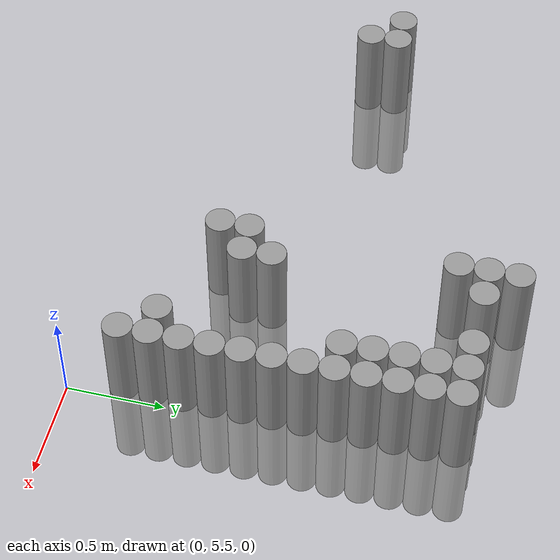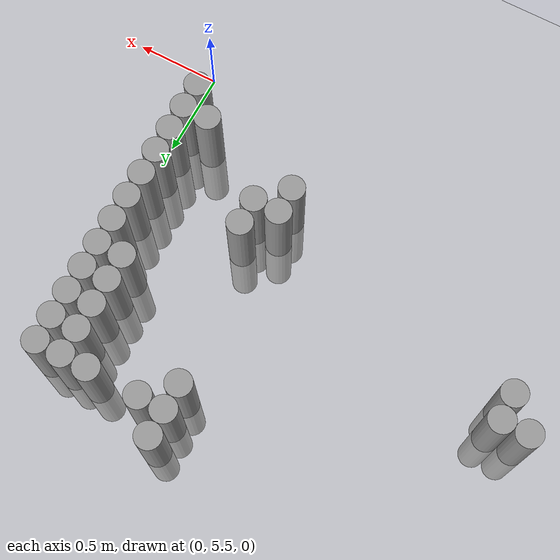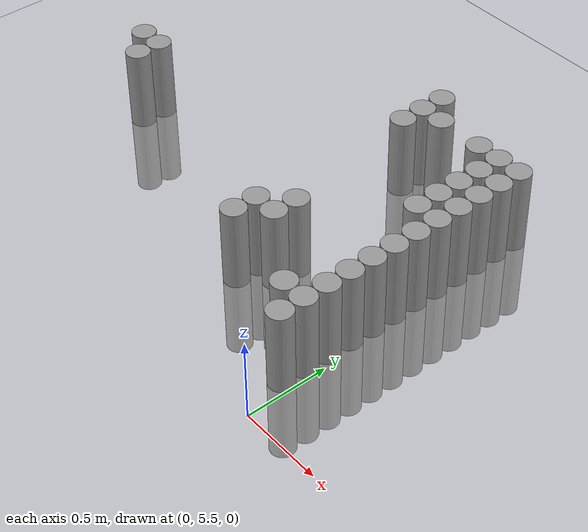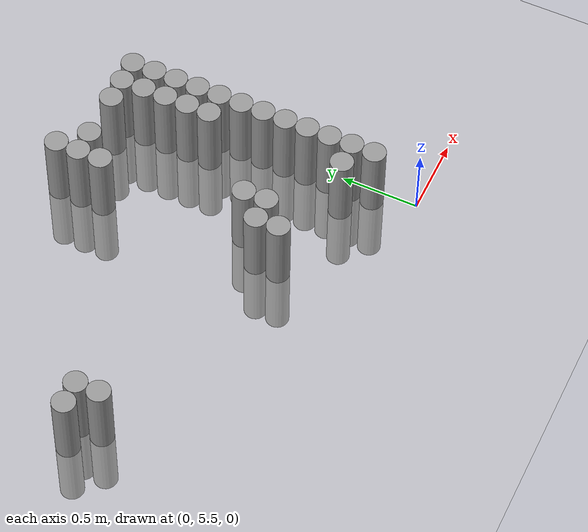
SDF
<sdf version="1.6">
 <world name="default">
  <model name="ground_plane">
   <static>1</static>
   <static>1</static>
   <link name="link">
    <collision name="collision">
     <geometry><plane><normal>0 0 1</normal><size>100 100</size></plane></geometry>
     <surface><friction><ode><mu>100</mu><mu2>50</mu2></ode></friction></surface>
    </collision>
    <visual name="visual">
     <cast_shadows>0</cast_shadows>
     <geometry><plane><normal>0 0 1</normal><size>100 100</size></plane></geometry>
     <material>
      <script><uri>file://media/materials/scripts/gazebo.material</uri><name>Gazebo/Grey</name></script>
     </material>
    </visual>
   </link>
  </model>
  <model name="unit_cylinder_173">
   <static>1</static>
   <pose>-2.475000 6.675000 0.000000 0.000000 0.000000 0.000000</pose>
   <link name="link">
    <inertial>
     <mass>1</mass>
     <inertia><ixx>0.145833</ixx><ixy>0</ixy><ixz>0</ixz><iyy>0.145833</iyy><iyz>0</iyz><izz>0.125</izz></inertia>
    </inertial>
    <collision name="collision">
     <geometry><cylinder><radius>0.075000</radius><length>1</length></cylinder></geometry>
    </collision>
    <visual name="visual">
     <geometry><cylinder><radius>0.075000</radius><length>1</length></cylinder></geometry>
     <material>
      <script><name>Gazebo/Grey</name><uri>file://media/materials/scripts/gazebo.material</uri></script>
     </material>
    </visual>
   </link>
  </model>
  <model name="unit_cylinder_175">
   <static>1</static>
   <pose>-2.325000 6.525000 0.000000 0.000000 0.000000 0.000000</pose>
   <link name="link">
    <inertial>
     <mass>1</mass>
     <inertia><ixx>0.145833</ixx><ixy>0</ixy><ixz>0</ixz><iyy>0.145833</iyy><iyz>0</iyz><izz>0.125</izz></inertia>
    </inertial>
    <collision name="collision">
     <geometry><cylinder><radius>0.075000</radius><length>1</length></cylinder></geometry>
    </collision>
    <visual name="visual">
     <geometry><cylinder><radius>0.075000</radius><length>1</length></cylinder></geometry>
     <material>
      <script><name>Gazebo/Grey</name><uri>file://media/materials/scripts/gazebo.material</uri></script>
     </material>
    </visual>
   </link>
  </model>
  <model name="unit_cylinder_176">
   <static>1</static>
   <pose>-2.325000 6.675000 0.000000 0.000000 0.000000 0.000000</pose>
   <link name="link">
    <inertial>
     <mass>1</mass>
     <inertia><ixx>0.145833</ixx><ixy>0</ixy><ixz>0</ixz><iyy>0.145833</iyy><iyz>0</iyz><izz>0.125</izz></inertia>
    </inertial>
    <collision name="collision">
     <geometry><cylinder><radius>0.075000</radius><length>1</length></cylinder></geometry>
    </collision>
    <visual name="visual">
     <geometry><cylinder><radius>0.075000</radius><length>1</length></cylinder></geometry>
     <material>
      <script><name>Gazebo/Grey</name><uri>file://media/materials/scripts/gazebo.material</uri></script>
     </material>
    </visual>
   </link>
  </model>
  <model name="unit_cylinder_179">
   <static>1</static>
   <pose>-0.825000 6.075000 0.000000 0.000000 0.000000 0.000000</pose>
   <link name="link">
    <inertial>
     <mass>1</mass>
     <inertia><ixx>0.145833</ixx><ixy>0</ixy><ixz>0</ixz><iyy>0.145833</iyy><iyz>0</iyz><izz>0.125</izz></inertia>
    </inertial>
    <collision name="collision">
     <geometry><cylinder><radius>0.075000</radius><length>1</length></cylinder></geometry>
    </collision>
    <visual name="visual">
     <geometry><cylinder><radius>0.075000</radius><length>1</length></cylinder></geometry>
     <material>
      <script><name>Gazebo/Grey</name><uri>file://media/materials/scripts/gazebo.material</uri></script>
     </material>
    </visual>
   </link>
  </model>
  <model name="unit_cylinder_180">
   <static>1</static>
   <pose>-0.825000 6.225000 0.000000 0.000000 0.000000 0.000000</pose>
   <link name="link">
    <inertial>
     <mass>1</mass>
     <inertia><ixx>0.145833</ixx><ixy>0</ixy><ixz>0</ixz><iyy>0.145833</iyy><iyz>0</iyz><izz>0.125</izz></inertia>
    </inertial>
    <collision name="collision">
     <geometry><cylinder><radius>0.075000</radius><length>1</length></cylinder></geometry>
    </collision>
    <visual name="visual">
     <geometry><cylinder><radius>0.075000</radius><length>1</length></cylinder></geometry>
     <material>
      <script><name>Gazebo/Grey</name><uri>file://media/materials/scripts/gazebo.material</uri></script>
     </material>
    </visual>
   </link>
  </model>
  <model name="unit_cylinder_181">
   <static>1</static>
   <pose>-0.825000 7.275000 0.000000 0.000000 0.000000 0.000000</pose>
   <link name="link">
    <inertial>
     <mass>1</mass>
     <inertia><ixx>0.145833</ixx><ixy>0</ixy><ixz>0</ixz><iyy>0.145833</iyy><iyz>0</iyz><izz>0.125</izz></inertia>
    </inertial>
    <collision name="collision">
     <geometry><cylinder><radius>0.075000</radius><length>1</length></cylinder></geometry>
    </collision>
    <visual name="visual">
     <geometry><cylinder><radius>0.075000</radius><length>1</length></cylinder></geometry>
     <material>
      <script><name>Gazebo/Grey</name><uri>file://media/materials/scripts/gazebo.material</uri></script>
     </material>
    </visual>
   </link>
  </model>
  <model name="unit_cylinder_182">
   <static>1</static>
   <pose>-0.825000 7.425000 0.000000 0.000000 0.000000 0.000000</pose>
   <link name="link">
    <inertial>
     <mass>1</mass>
     <inertia><ixx>0.145833</ixx><ixy>0</ixy><ixz>0</ixz><iyy>0.145833</iyy><iyz>0</iyz><izz>0.125</izz></inertia>
    </inertial>
    <collision name="collision">
     <geometry><cylinder><radius>0.075000</radius><length>1</length></cylinder></geometry>
    </collision>
    <visual name="visual">
     <geometry><cylinder><radius>0.075000</radius><length>1</length></cylinder></geometry>
     <material>
      <script><name>Gazebo/Grey</name><uri>file://media/materials/scripts/gazebo.material</uri></script>
     </material>
    </visual>
   </link>
  </model>
  <model name="unit_cylinder_183">
   <static>1</static>
   <pose>-0.825000 7.575000 0.000000 0.000000 0.000000 0.000000</pose>
   <link name="link">
    <inertial>
     <mass>1</mass>
     <inertia><ixx>0.145833</ixx><ixy>0</ixy><ixz>0</ixz><iyy>0.145833</iyy><iyz>0</iyz><izz>0.125</izz></inertia>
    </inertial>
    <collision name="collision">
     <geometry><cylinder><radius>0.075000</radius><length>1</length></cylinder></geometry>
    </collision>
    <visual name="visual">
     <geometry><cylinder><radius>0.075000</radius><length>1</length></cylinder></geometry>
     <material>
      <script><name>Gazebo/Grey</name><uri>file://media/materials/scripts/gazebo.material</uri></script>
     </material>
    </visual>
   </link>
  </model>
  <model name="unit_cylinder_185">
   <static>1</static>
   <pose>-0.675000 6.225000 0.000000 0.000000 0.000000 0.000000</pose>
   <link name="link">
    <inertial>
     <mass>1</mass>
     <inertia><ixx>0.145833</ixx><ixy>0</ixy><ixz>0</ixz><iyy>0.145833</iyy><iyz>0</iyz><izz>0.125</izz></inertia>
    </inertial>
    <collision name="collision">
     <geometry><cylinder><radius>0.075000</radius><length>1</length></cylinder></geometry>
    </collision>
    <visual name="visual">
     <geometry><cylinder><radius>0.075000</radius><length>1</length></cylinder></geometry>
     <material>
      <script><name>Gazebo/Grey</name><uri>file://media/materials/scripts/gazebo.material</uri></script>
     </material>
    </visual>
   </link>
  </model>
  <model name="unit_cylinder_186">
   <static>1</static>
   <pose>-0.675000 6.375000 0.000000 0.000000 0.000000 0.000000</pose>
   <link name="link">
    <inertial>
     <mass>1</mass>
     <inertia><ixx>0.145833</ixx><ixy>0</ixy><ixz>0</ixz><iyy>0.145833</iyy><iyz>0</iyz><izz>0.125</izz></inertia>
    </inertial>
    <collision name="collision">
     <geometry><cylinder><radius>0.075000</radius><length>1</length></cylinder></geometry>
    </collision>
    <visual name="visual">
     <geometry><cylinder><radius>0.075000</radius><length>1</length></cylinder></geometry>
     <material>
      <script><name>Gazebo/Grey</name><uri>file://media/materials/scripts/gazebo.material</uri></script>
     </material>
    </visual>
   </link>
  </model>
  <model name="unit_cylinder_187">
   <static>1</static>
   <pose>-0.675000 7.425000 0.000000 0.000000 0.000000 0.000000</pose>
   <link name="link">
    <inertial>
     <mass>1</mass>
     <inertia><ixx>0.145833</ixx><ixy>0</ixy><ixz>0</ixz><iyy>0.145833</iyy><iyz>0</iyz><izz>0.125</izz></inertia>
    </inertial>
    <collision name="collision">
     <geometry><cylinder><radius>0.075000</radius><length>1</length></cylinder></geometry>
    </collision>
    <visual name="visual">
     <geometry><cylinder><radius>0.075000</radius><length>1</length></cylinder></geometry>
     <material>
      <script><name>Gazebo/Grey</name><uri>file://media/materials/scripts/gazebo.material</uri></script>
     </material>
    </visual>
   </link>
  </model>
  <model name="unit_cylinder_190">
   <static>1</static>
   <pose>-0.375000 7.425000 0.000000 0.000000 0.000000 0.000000</pose>
   <link name="link">
    <inertial>
     <mass>1</mass>
     <inertia><ixx>0.145833</ixx><ixy>0</ixy><ixz>0</ixz><iyy>0.145833</iyy><iyz>0</iyz><izz>0.125</izz></inertia>
    </inertial>
    <collision name="collision">
     <geometry><cylinder><radius>0.075000</radius><length>1</length></cylinder></geometry>
    </collision>
    <visual name="visual">
     <geometry><cylinder><radius>0.075000</radius><length>1</length></cylinder></geometry>
     <material>
      <script><name>Gazebo/Grey</name><uri>file://media/materials/scripts/gazebo.material</uri></script>
     </material>
    </visual>
   </link>
  </model>
  <model name="unit_cylinder_196">
   <static>1</static>
   <pose>-0.225000 5.925000 0.000000 0.000000 0.000000 0.000000</pose>
   <link name="link">
    <inertial>
     <mass>1</mass>
     <inertia><ixx>0.145833</ixx><ixy>0</ixy><ixz>0</ixz><iyy>0.145833</iyy><iyz>0</iyz><izz>0.125</izz></inertia>
    </inertial>
    <collision name="collision">
     <geometry><cylinder><radius>0.075000</radius><length>1</length></cylinder></geometry>
    </collision>
    <visual name="visual">
     <geometry><cylinder><radius>0.075000</radius><length>1</length></cylinder></geometry>
     <material>
      <script><name>Gazebo/Grey</name><uri>file://media/materials/scripts/gazebo.material</uri></script>
     </material>
    </visual>
   </link>
  </model>
  <model name="unit_cylinder_197">
   <static>1</static>
   <pose>-0.225000 6.825000 0.000000 0.000000 0.000000 0.000000</pose>
   <link name="link">
    <inertial>
     <mass>1</mass>
     <inertia><ixx>0.145833</ixx><ixy>0</ixy><ixz>0</ixz><iyy>0.145833</iyy><iyz>0</iyz><izz>0.125</izz></inertia>
    </inertial>
    <collision name="collision">
     <geometry><cylinder><radius>0.075000</radius><length>1</length></cylinder></geometry>
    </collision>
    <visual name="visual">
     <geometry><cylinder><radius>0.075000</radius><length>1</length></cylinder></geometry>
     <material>
      <script><name>Gazebo/Grey</name><uri>file://media/materials/scripts/gazebo.material</uri></script>
     </material>
    </visual>
   </link>
  </model>
  <model name="unit_cylinder_198">
   <static>1</static>
   <pose>-0.225000 6.975000 0.000000 0.000000 0.000000 0.000000</pose>
   <link name="link">
    <inertial>
     <mass>1</mass>
     <inertia><ixx>0.145833</ixx><ixy>0</ixy><ixz>0</ixz><iyy>0.145833</iyy><iyz>0</iyz><izz>0.125</izz></inertia>
    </inertial>
    <collision name="collision">
     <geometry><cylinder><radius>0.075000</radius><length>1</length></cylinder></geometry>
    </collision>
    <visual name="visual">
     <geometry><cylinder><radius>0.075000</radius><length>1</length></cylinder></geometry>
     <material>
      <script><name>Gazebo/Grey</name><uri>file://media/materials/scripts/gazebo.material</uri></script>
     </material>
    </visual>
   </link>
  </model>
  <model name="unit_cylinder_199">
   <static>1</static>
   <pose>-0.225000 7.125000 0.000000 0.000000 0.000000 0.000000</pose>
   <link name="link">
    <inertial>
     <mass>1</mass>
     <inertia><ixx>0.145833</ixx><ixy>0</ixy><ixz>0</ixz><iyy>0.145833</iyy><iyz>0</iyz><izz>0.125</izz></inertia>
    </inertial>
    <collision name="collision">
     <geometry><cylinder><radius>0.075000</radius><length>1</length></cylinder></geometry>
    </collision>
    <visual name="visual">
     <geometry><cylinder><radius>0.075000</radius><length>1</length></cylinder></geometry>
     <material>
      <script><name>Gazebo/Grey</name><uri>file://media/materials/scripts/gazebo.material</uri></script>
     </material>
    </visual>
   </link>
  </model>
  <model name="unit_cylinder_200">
   <static>1</static>
   <pose>-0.225000 7.275000 0.000000 0.000000 0.000000 0.000000</pose>
   <link name="link">
    <inertial>
     <mass>1</mass>
     <inertia><ixx>0.145833</ixx><ixy>0</ixy><ixz>0</ixz><iyy>0.145833</iyy><iyz>0</iyz><izz>0.125</izz></inertia>
    </inertial>
    <collision name="collision">
     <geometry><cylinder><radius>0.075000</radius><length>1</length></cylinder></geometry>
    </collision>
    <visual name="visual">
     <geometry><cylinder><radius>0.075000</radius><length>1</length></cylinder></geometry>
     <material>
      <script><name>Gazebo/Grey</name><uri>file://media/materials/scripts/gazebo.material</uri></script>
     </material>
    </visual>
   </link>
  </model>
  <model name="unit_cylinder_201">
   <static>1</static>
   <pose>-0.225000 7.425000 0.000000 0.000000 0.000000 0.000000</pose>
   <link name="link">
    <inertial>
     <mass>1</mass>
     <inertia><ixx>0.145833</ixx><ixy>0</ixy><ixz>0</ixz><iyy>0.145833</iyy><iyz>0</iyz><izz>0.125</izz></inertia>
    </inertial>
    <collision name="collision">
     <geometry><cylinder><radius>0.075000</radius><length>1</length></cylinder></geometry>
    </collision>
    <visual name="visual">
     <geometry><cylinder><radius>0.075000</radius><length>1</length></cylinder></geometry>
     <material>
      <script><name>Gazebo/Grey</name><uri>file://media/materials/scripts/gazebo.material</uri></script>
     </material>
    </visual>
   </link>
  </model>
  <model name="unit_cylinder_212">
   <static>1</static>
   <pose>-0.075000 5.775000 0.000000 0.000000 0.000000 0.000000</pose>
   <link name="link">
    <inertial>
     <mass>1</mass>
     <inertia><ixx>0.145833</ixx><ixy>0</ixy><ixz>0</ixz><iyy>0.145833</iyy><iyz>0</iyz><izz>0.125</izz></inertia>
    </inertial>
    <collision name="collision">
     <geometry><cylinder><radius>0.075000</radius><length>1</length></cylinder></geometry>
    </collision>
    <visual name="visual">
     <geometry><cylinder><radius>0.075000</radius><length>1</length></cylinder></geometry>
     <material>
      <script><name>Gazebo/Grey</name><uri>file://media/materials/scripts/gazebo.material</uri></script>
     </material>
    </visual>
   </link>
  </model>
  <model name="unit_cylinder_213">
   <static>1</static>
   <pose>-0.075000 5.925000 0.000000 0.000000 0.000000 0.000000</pose>
   <link name="link">
    <inertial>
     <mass>1</mass>
     <inertia><ixx>0.145833</ixx><ixy>0</ixy><ixz>0</ixz><iyy>0.145833</iyy><iyz>0</iyz><izz>0.125</izz></inertia>
    </inertial>
    <collision name="collision">
     <geometry><cylinder><radius>0.075000</radius><length>1</length></cylinder></geometry>
    </collision>
    <visual name="visual">
     <geometry><cylinder><radius>0.075000</radius><length>1</length></cylinder></geometry>
     <material>
      <script><name>Gazebo/Grey</name><uri>file://media/materials/scripts/gazebo.material</uri></script>
     </material>
    </visual>
   </link>
  </model>
  <model name="unit_cylinder_214">
   <static>1</static>
   <pose>-0.075000 6.075000 0.000000 0.000000 0.000000 0.000000</pose>
   <link name="link">
    <inertial>
     <mass>1</mass>
     <inertia><ixx>0.145833</ixx><ixy>0</ixy><ixz>0</ixz><iyy>0.145833</iyy><iyz>0</iyz><izz>0.125</izz></inertia>
    </inertial>
    <collision name="collision">
     <geometry><cylinder><radius>0.075000</radius><length>1</length></cylinder></geometry>
    </collision>
    <visual name="visual">
     <geometry><cylinder><radius>0.075000</radius><length>1</length></cylinder></geometry>
     <material>
      <script><name>Gazebo/Grey</name><uri>file://media/materials/scripts/gazebo.material</uri></script>
     </material>
    </visual>
   </link>
  </model>
  <model name="unit_cylinder_215">
   <static>1</static>
   <pose>-0.075000 6.225000 0.000000 0.000000 0.000000 0.000000</pose>
   <link name="link">
    <inertial>
     <mass>1</mass>
     <inertia><ixx>0.145833</ixx><ixy>0</ixy><ixz>0</ixz><iyy>0.145833</iyy><iyz>0</iyz><izz>0.125</izz></inertia>
    </inertial>
    <collision name="collision">
     <geometry><cylinder><radius>0.075000</radius><length>1</length></cylinder></geometry>
    </collision>
    <visual name="visual">
     <geometry><cylinder><radius>0.075000</radius><length>1</length></cylinder></geometry>
     <material>
      <script><name>Gazebo/Grey</name><uri>file://media/materials/scripts/gazebo.material</uri></script>
     </material>
    </visual>
   </link>
  </model>
  <model name="unit_cylinder_216">
   <static>1</static>
   <pose>-0.075000 6.375000 0.000000 0.000000 0.000000 0.000000</pose>
   <link name="link">
    <inertial>
     <mass>1</mass>
     <inertia><ixx>0.145833</ixx><ixy>0</ixy><ixz>0</ixz><iyy>0.145833</iyy><iyz>0</iyz><izz>0.125</izz></inertia>
    </inertial>
    <collision name="collision">
     <geometry><cylinder><radius>0.075000</radius><length>1</length></cylinder></geometry>
    </collision>
    <visual name="visual">
     <geometry><cylinder><radius>0.075000</radius><length>1</length></cylinder></geometry>
     <material>
      <script><name>Gazebo/Grey</name><uri>file://media/materials/scripts/gazebo.material</uri></script>
     </material>
    </visual>
   </link>
  </model>
  <model name="unit_cylinder_217">
   <static>1</static>
   <pose>-0.075000 6.525000 0.000000 0.000000 0.000000 0.000000</pose>
   <link name="link">
    <inertial>
     <mass>1</mass>
     <inertia><ixx>0.145833</ixx><ixy>0</ixy><ixz>0</ixz><iyy>0.145833</iyy><iyz>0</iyz><izz>0.125</izz></inertia>
    </inertial>
    <collision name="collision">
     <geometry><cylinder><radius>0.075000</radius><length>1</length></cylinder></geometry>
    </collision>
    <visual name="visual">
     <geometry><cylinder><radius>0.075000</radius><length>1</length></cylinder></geometry>
     <material>
      <script><name>Gazebo/Grey</name><uri>file://media/materials/scripts/gazebo.material</uri></script>
     </material>
    </visual>
   </link>
  </model>
  <model name="unit_cylinder_218">
   <static>1</static>
   <pose>-0.075000 6.675000 0.000000 0.000000 0.000000 0.000000</pose>
   <link name="link">
    <inertial>
     <mass>1</mass>
     <inertia><ixx>0.145833</ixx><ixy>0</ixy><ixz>0</ixz><iyy>0.145833</iyy><iyz>0</iyz><izz>0.125</izz></inertia>
    </inertial>
    <collision name="collision">
     <geometry><cylinder><radius>0.075000</radius><length>1</length></cylinder></geometry>
    </collision>
    <visual name="visual">
     <geometry><cylinder><radius>0.075000</radius><length>1</length></cylinder></geometry>
     <material>
      <script><name>Gazebo/Grey</name><uri>file://media/materials/scripts/gazebo.material</uri></script>
     </material>
    </visual>
   </link>
  </model>
  <model name="unit_cylinder_219">
   <static>1</static>
   <pose>-0.075000 6.825000 0.000000 0.000000 0.000000 0.000000</pose>
   <link name="link">
    <inertial>
     <mass>1</mass>
     <inertia><ixx>0.145833</ixx><ixy>0</ixy><ixz>0</ixz><iyy>0.145833</iyy><iyz>0</iyz><izz>0.125</izz></inertia>
    </inertial>
    <collision name="collision">
     <geometry><cylinder><radius>0.075000</radius><length>1</length></cylinder></geometry>
    </collision>
    <visual name="visual">
     <geometry><cylinder><radius>0.075000</radius><length>1</length></cylinder></geometry>
     <material>
      <script><name>Gazebo/Grey</name><uri>file://media/materials/scripts/gazebo.material</uri></script>
     </material>
    </visual>
   </link>
  </model>
  <model name="unit_cylinder_220">
   <static>1</static>
   <pose>-0.075000 6.975000 0.000000 0.000000 0.000000 0.000000</pose>
   <link name="link">
    <inertial>
     <mass>1</mass>
     <inertia><ixx>0.145833</ixx><ixy>0</ixy><ixz>0</ixz><iyy>0.145833</iyy><iyz>0</iyz><izz>0.125</izz></inertia>
    </inertial>
    <collision name="collision">
     <geometry><cylinder><radius>0.075000</radius><length>1</length></cylinder></geometry>
    </collision>
    <visual name="visual">
     <geometry><cylinder><radius>0.075000</radius><length>1</length></cylinder></geometry>
     <material>
      <script><name>Gazebo/Grey</name><uri>file://media/materials/scripts/gazebo.material</uri></script>
     </material>
    </visual>
   </link>
  </model>
  <model name="unit_cylinder_221">
   <static>1</static>
   <pose>-0.075000 7.125000 0.000000 0.000000 0.000000 0.000000</pose>
   <link name="link">
    <inertial>
     <mass>1</mass>
     <inertia><ixx>0.145833</ixx><ixy>0</ixy><ixz>0</ixz><iyy>0.145833</iyy><iyz>0</iyz><izz>0.125</izz></inertia>
    </inertial>
    <collision name="collision">
     <geometry><cylinder><radius>0.075000</radius><length>1</length></cylinder></geometry>
    </collision>
    <visual name="visual">
     <geometry><cylinder><radius>0.075000</radius><length>1</length></cylinder></geometry>
     <material>
      <script><name>Gazebo/Grey</name><uri>file://media/materials/scripts/gazebo.material</uri></script>
     </material>
    </visual>
   </link>
  </model>
  <model name="unit_cylinder_222">
   <static>1</static>
   <pose>-0.075000 7.275000 0.000000 0.000000 0.000000 0.000000</pose>
   <link name="link">
    <inertial>
     <mass>1</mass>
     <inertia><ixx>0.145833</ixx><ixy>0</ixy><ixz>0</ixz><iyy>0.145833</iyy><iyz>0</iyz><izz>0.125</izz></inertia>
    </inertial>
    <collision name="collision">
     <geometry><cylinder><radius>0.075000</radius><length>1</length></cylinder></geometry>
    </collision>
    <visual name="visual">
     <geometry><cylinder><radius>0.075000</radius><length>1</length></cylinder></geometry>
     <material>
      <script><name>Gazebo/Grey</name><uri>file://media/materials/scripts/gazebo.material</uri></script>
     </material>
    </visual>
   </link>
  </model>
  <model name="unit_cylinder_223">
   <static>1</static>
   <pose>-0.075000 7.425000 0.000000 0.000000 0.000000 0.000000</pose>
   <link name="link">
    <inertial>
     <mass>1</mass>
     <inertia><ixx>0.145833</ixx><ixy>0</ixy><ixz>0</ixz><iyy>0.145833</iyy><iyz>0</iyz><izz>0.125</izz></inertia>
    </inertial>
    <collision name="collision">
     <geometry><cylinder><radius>0.075000</radius><length>1</length></cylinder></geometry>
    </collision>
    <visual name="visual">
     <geometry><cylinder><radius>0.075000</radius><length>1</length></cylinder></geometry>
     <material>
      <script><name>Gazebo/Grey</name><uri>file://media/materials/scripts/gazebo.material</uri></script>
     </material>
    </visual>
   </link>
  </model>
 </world>
</sdf>
